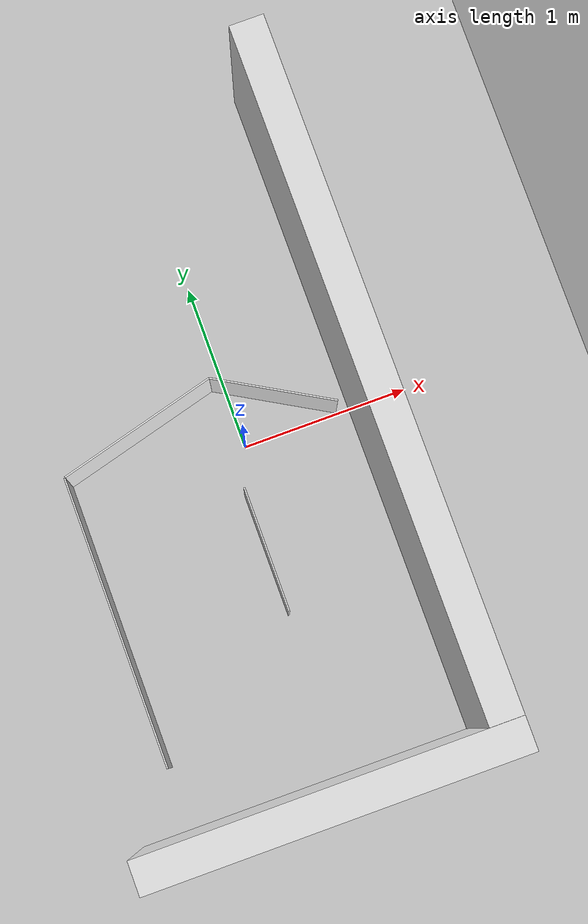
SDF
<?xml version="1.0"?>
<sdf version="1.5">
  <world name="sameilzadeh_lab_field">

    <include>
      <uri>model://ground_plane</uri>
    </include>

    <model name="wall_1">
      <pose>0.75 0 0.75 0 0 0</pose>
      <static>true</static>
      <link name="wall_1_link">
        <inertial>
          <mass>100.0</mass>
          <inertia>
            <ixx>16.6666666667</ixx>
            <ixy>0.0</ixy>
            <ixz>0.0</ixz>
            <iyy>16.6666666667</iyy>
            <iyz>0.0</iyz>
            <izz>16.6666666667</izz>
          </inertia>
        </inertial>
        <visual name="visual">
          <geometry>
            <box>
              <size>0.2 4 1.5</size>
            </box>
          </geometry>
          <material>
            <script>
              <uri>file://media/materials/scripts/gazebo.material</uri>
              <name>Gazebo/White</name>
            </script>
          </material>
        </visual>
        <collision name="collision">
          <geometry>
            <box>
              <size>0.2 4 1.5</size>
            </box>
          </geometry>
        </collision>
      </link>
    </model>

    <model name="wall_2">
      <pose>-0.1 -0.65 0.25 0 0 0</pose>
      <static>true</static>
      <link name="wall_2_link">
        <inertial>
          <mass>1.0</mass>
          <inertia>
            <ixx>0.166666666667</ixx>
            <ixy>0.0</ixy>
            <ixz>0.0</ixz>
            <iyy>0.166666666667</iyy>
            <iyz>0.0</iyz>
            <izz>0.166666666667</izz>
          </inertia>
        </inertial>
        <visual name="visual">
          <geometry>
            <box>
              <size>0.01 0.75 0.5</size>
            </box>
          </geometry>
          <material>
            <script>
              <uri>file://media/materials/scripts/gazebo.material</uri>
              <name>Gazebo/White</name>
            </script>
          </material>
        </visual>
        <collision name="collision">
          <geometry>
            <box>
              <size>0.01 0.75 0.5</size>
            </box>
          </geometry>
        </collision>
      </link>
    </model>

    <model name="wall_3">
      <pose>0.25 0.2 0.25 0 0 1.05</pose>
      <static>true</static>
      <link name="wall_3_link">
        <inertial>
          <mass>1.0</mass>
          <inertia>
            <ixx>0.166666666667</ixx>
            <ixy>0.0</ixy>
            <ixz>0.0</ixz>
            <iyy>0.166666666667</iyy>
            <iyz>0.0</iyz>
            <izz>0.166666666667</izz>
          </inertia>
        </inertial>
        <visual name="visual">
          <geometry>
            <box>
              <size>0.01 0.75 0.5</size>
            </box>
          </geometry>
          <material>
            <script>
              <uri>file://media/materials/scripts/gazebo.material</uri>
              <name>Gazebo/White</name>
            </script>
          </material>
        </visual>
        <collision name="collision">
          <geometry>
            <box>
              <size>0.01 0.75 0.5</size>
            </box>
          </geometry>
        </collision>
      </link>
    </model>

    <model name="wall_4">
      <pose>-0.56 0.257 0.25 0 0 -1.31</pose>
      <static>true</static>
      <link name="wall_4_link">
        <inertial>
          <mass>1.0</mass>
          <inertia>
            <ixx>0.166666666667</ixx>
            <ixy>0.0</ixy>
            <ixz>0.0</ixz>
            <iyy>0.166666666667</iyy>
            <iyz>0.0</iyz>
            <izz>0.166666666667</izz>
          </inertia>
        </inertial>
        <visual name="visual">
          <geometry>
            <box>
              <size>0.01 1 0.5</size>
            </box>
          </geometry>
          <material>
            <script>
              <uri>file://media/materials/scripts/gazebo.material</uri>
              <name>Gazebo/White</name>
            </script>
          </material>
        </visual>
        <collision name="collision">
          <geometry>
            <box>
              <size>0.01 1 0.5</size>
            </box>
          </geometry>
        </collision>
      </link>
    </model>

    <model name="wall_5">
      <pose>-1.045 -0.75 0.25 0 0 0</pose>
      <static>true</static>
      <link name="wall_5_link">
        <inertial>
          <mass>1.0</mass>
          <inertia>
            <ixx>0.166666666667</ixx>
            <ixy>0.0</ixy>
            <ixz>0.0</ixz>
            <iyy>0.166666666667</iyy>
            <iyz>0.0</iyz>
            <izz>0.166666666667</izz>
          </inertia>
        </inertial>
        <visual name="visual">
          <geometry>
            <box>
              <size>0.01 1.75 0.5</size>
            </box>
          </geometry>
          <material>
            <script>
              <uri>file://media/materials/scripts/gazebo.material</uri>
              <name>Gazebo/White</name>
            </script>
          </material>
        </visual>
        <collision name="collision">
          <geometry>
            <box>
              <size>0.01 1.75 0.5</size>
            </box>
          </geometry>
        </collision>
      </link>
    </model>

    <model name="wall_6">
      <pose>-0.25 -2.1 0.75 0 0 1.57</pose>
      <static>true</static>
      <link name="wall_6_link">
        <inertial>
          <mass>100.0</mass>
          <inertia>
            <ixx>16.6666666667</ixx>
            <ixy>0.0</ixy>
            <ixz>0.0</ixz>
            <iyy>16.6666666667</iyy>
            <iyz>0.0</iyz>
            <izz>16.6666666667</izz>
          </inertia>
        </inertial>
        <visual name="visual">
          <geometry>
            <box>
              <size>0.2 2.2 1.5</size>
            </box>
          </geometry>
          <material>
            <script>
              <uri>file://media/materials/scripts/gazebo.material</uri>
              <name>Gazebo/White</name>
            </script>
          </material>
        </visual>
        <collision name="collision">
          <geometry>
            <box>
              <size>0.2 2.2 1.5</size>
            </box>
          </geometry>
        </collision>
      </link>
    </model>

    <light name='sun' type='directional'>
      <cast_shadows>1</cast_shadows>
      <pose>0 0 10 0 0 0</pose>
      <diffuse>0.8 0.8 0.8 1</diffuse>
      <specular>0.2 0.2 0.2 1</specular>
      <attenuation>
        <range>1000</range>
        <constant>0.9</constant>
        <linear>0.01</linear>
        <quadratic>0.001</quadratic>
      </attenuation>
      <direction>-0.5 0.1 -0.9</direction>
    </light>

  </world>
</sdf>
